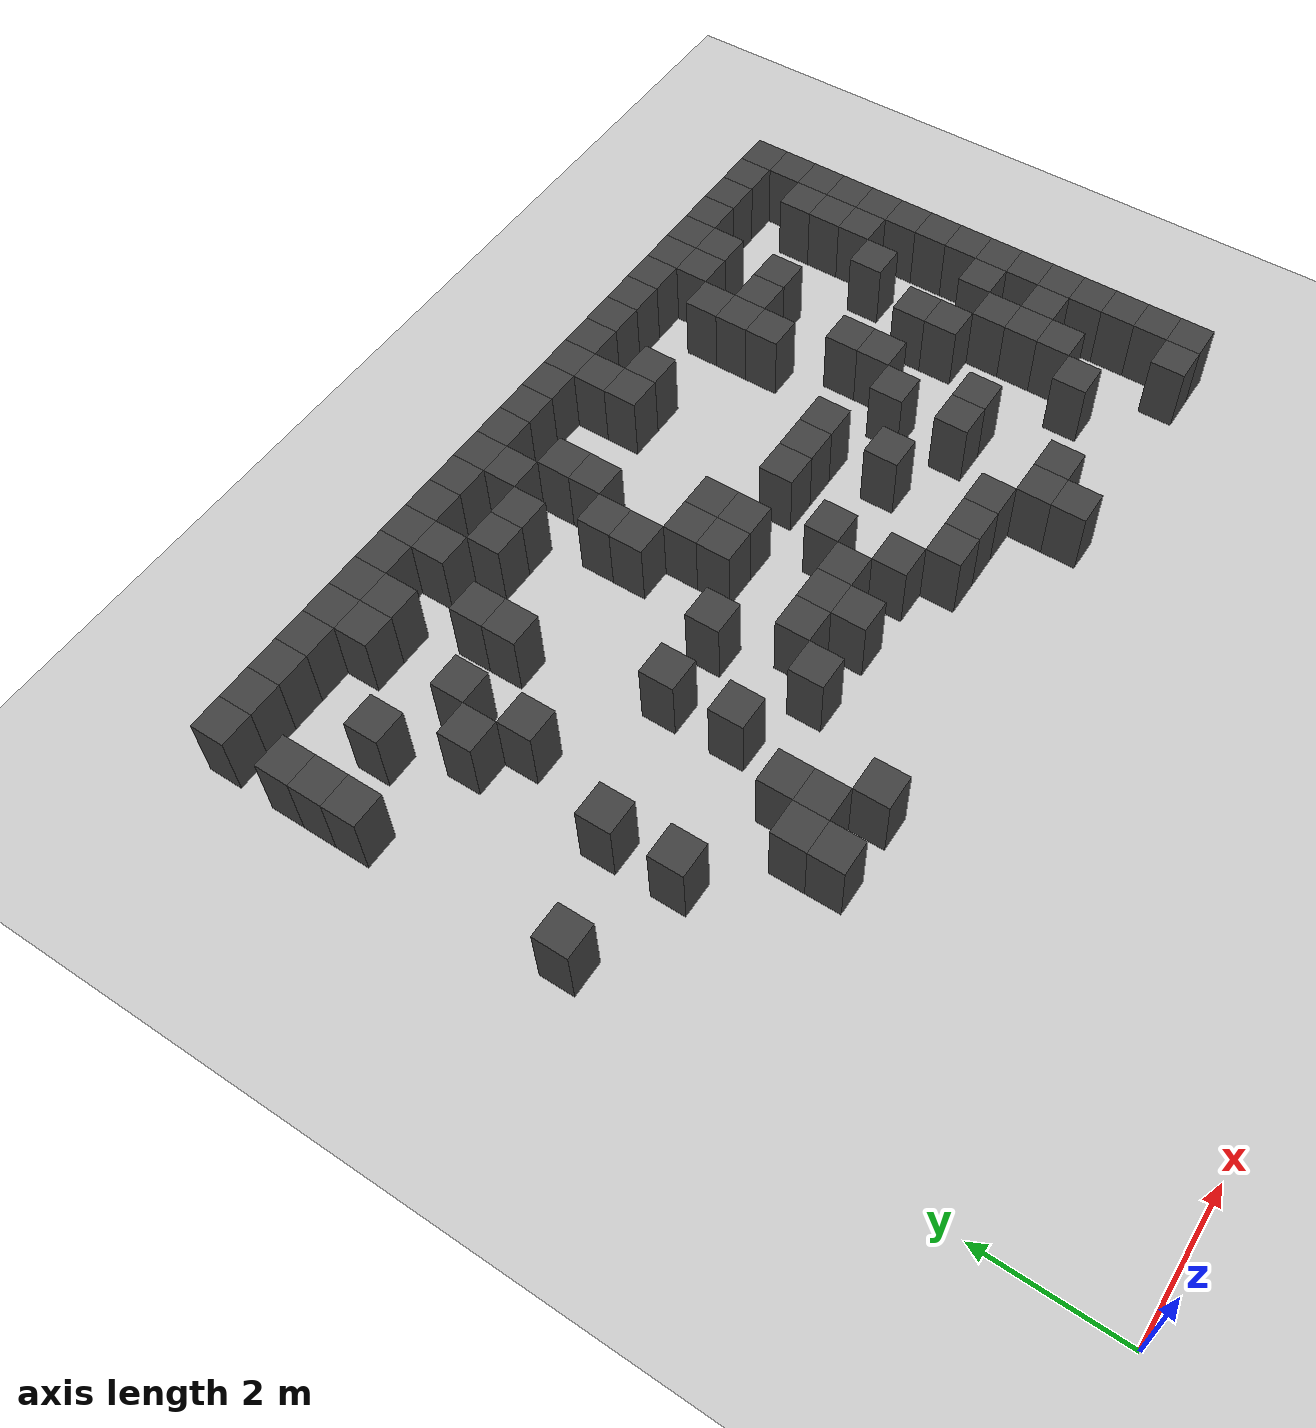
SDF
<sdf version="1.7">
 <world name="map_4557">
  <model name="ground_plane">
   <static>true</static>
   <link name="link">
    <collision name="collision">
     <geometry><plane><normal>0 0 1</normal><size>200 200</size></plane></geometry>
    </collision>
    <visual name="visual">
     <geometry><plane><normal>0 0 1</normal><size>200 200</size></plane></geometry>
     <material><ambient>0.8 0.8 0.8 1</ambient><diffuse>0.8 0.8 0.8 1</diffuse></material>
    </visual>
   </link>
  </model>
  <model name="maze_environment">
   <static>true</static>
   <link name="wall_25">
    <pose>0.250 12.250 0.500 0 0 0</pose>
    <collision name="col"><geometry><box><size>0.5 0.5 1.0</size></box></geometry></collision>
    <visual name="vis">
     <geometry><box><size>0.5 0.5 1.0</size></box></geometry>
     <material><ambient>0.15 0.15 0.15 1</ambient><diffuse>0.25 0.25 0.25 1</diffuse></material>
    </visual>
   </link>
   <link name="wall_26">
    <pose>0.750 12.250 0.500 0 0 0</pose>
    <collision name="col"><geometry><box><size>0.5 0.5 1.0</size></box></geometry></collision>
    <visual name="vis">
     <geometry><box><size>0.5 0.5 1.0</size></box></geometry>
     <material><ambient>0.15 0.15 0.15 1</ambient><diffuse>0.25 0.25 0.25 1</diffuse></material>
    </visual>
   </link>
   <link name="wall_27">
    <pose>1.250 12.250 0.500 0 0 0</pose>
    <collision name="col"><geometry><box><size>0.5 0.5 1.0</size></box></geometry></collision>
    <visual name="vis">
     <geometry><box><size>0.5 0.5 1.0</size></box></geometry>
     <material><ambient>0.15 0.15 0.15 1</ambient><diffuse>0.25 0.25 0.25 1</diffuse></material>
    </visual>
   </link>
   <link name="wall_28">
    <pose>1.750 12.250 0.500 0 0 0</pose>
    <collision name="col"><geometry><box><size>0.5 0.5 1.0</size></box></geometry></collision>
    <visual name="vis">
     <geometry><box><size>0.5 0.5 1.0</size></box></geometry>
     <material><ambient>0.15 0.15 0.15 1</ambient><diffuse>0.25 0.25 0.25 1</diffuse></material>
    </visual>
   </link>
   <link name="wall_29">
    <pose>2.250 12.250 0.500 0 0 0</pose>
    <collision name="col"><geometry><box><size>0.5 0.5 1.0</size></box></geometry></collision>
    <visual name="vis">
     <geometry><box><size>0.5 0.5 1.0</size></box></geometry>
     <material><ambient>0.15 0.15 0.15 1</ambient><diffuse>0.25 0.25 0.25 1</diffuse></material>
    </visual>
   </link>
   <link name="wall_30">
    <pose>2.750 12.250 0.500 0 0 0</pose>
    <collision name="col"><geometry><box><size>0.5 0.5 1.0</size></box></geometry></collision>
    <visual name="vis">
     <geometry><box><size>0.5 0.5 1.0</size></box></geometry>
     <material><ambient>0.15 0.15 0.15 1</ambient><diffuse>0.25 0.25 0.25 1</diffuse></material>
    </visual>
   </link>
   <link name="wall_31">
    <pose>3.250 12.250 0.500 0 0 0</pose>
    <collision name="col"><geometry><box><size>0.5 0.5 1.0</size></box></geometry></collision>
    <visual name="vis">
     <geometry><box><size>0.5 0.5 1.0</size></box></geometry>
     <material><ambient>0.15 0.15 0.15 1</ambient><diffuse>0.25 0.25 0.25 1</diffuse></material>
    </visual>
   </link>
   <link name="wall_32">
    <pose>3.750 12.250 0.500 0 0 0</pose>
    <collision name="col"><geometry><box><size>0.5 0.5 1.0</size></box></geometry></collision>
    <visual name="vis">
     <geometry><box><size>0.5 0.5 1.0</size></box></geometry>
     <material><ambient>0.15 0.15 0.15 1</ambient><diffuse>0.25 0.25 0.25 1</diffuse></material>
    </visual>
   </link>
   <link name="wall_33">
    <pose>4.250 12.250 0.500 0 0 0</pose>
    <collision name="col"><geometry><box><size>0.5 0.5 1.0</size></box></geometry></collision>
    <visual name="vis">
     <geometry><box><size>0.5 0.5 1.0</size></box></geometry>
     <material><ambient>0.15 0.15 0.15 1</ambient><diffuse>0.25 0.25 0.25 1</diffuse></material>
    </visual>
   </link>
   <link name="wall_34">
    <pose>4.750 12.250 0.500 0 0 0</pose>
    <collision name="col"><geometry><box><size>0.5 0.5 1.0</size></box></geometry></collision>
    <visual name="vis">
     <geometry><box><size>0.5 0.5 1.0</size></box></geometry>
     <material><ambient>0.15 0.15 0.15 1</ambient><diffuse>0.25 0.25 0.25 1</diffuse></material>
    </visual>
   </link>
   <link name="wall_35">
    <pose>5.250 12.250 0.500 0 0 0</pose>
    <collision name="col"><geometry><box><size>0.5 0.5 1.0</size></box></geometry></collision>
    <visual name="vis">
     <geometry><box><size>0.5 0.5 1.0</size></box></geometry>
     <material><ambient>0.15 0.15 0.15 1</ambient><diffuse>0.25 0.25 0.25 1</diffuse></material>
    </visual>
   </link>
   <link name="wall_36">
    <pose>5.750 12.250 0.500 0 0 0</pose>
    <collision name="col"><geometry><box><size>0.5 0.5 1.0</size></box></geometry></collision>
    <visual name="vis">
     <geometry><box><size>0.5 0.5 1.0</size></box></geometry>
     <material><ambient>0.15 0.15 0.15 1</ambient><diffuse>0.25 0.25 0.25 1</diffuse></material>
    </visual>
   </link>
   <link name="wall_37">
    <pose>6.250 12.250 0.500 0 0 0</pose>
    <collision name="col"><geometry><box><size>0.5 0.5 1.0</size></box></geometry></collision>
    <visual name="vis">
     <geometry><box><size>0.5 0.5 1.0</size></box></geometry>
     <material><ambient>0.15 0.15 0.15 1</ambient><diffuse>0.25 0.25 0.25 1</diffuse></material>
    </visual>
   </link>
   <link name="wall_38">
    <pose>6.750 12.250 0.500 0 0 0</pose>
    <collision name="col"><geometry><box><size>0.5 0.5 1.0</size></box></geometry></collision>
    <visual name="vis">
     <geometry><box><size>0.5 0.5 1.0</size></box></geometry>
     <material><ambient>0.15 0.15 0.15 1</ambient><diffuse>0.25 0.25 0.25 1</diffuse></material>
    </visual>
   </link>
   <link name="wall_39">
    <pose>7.250 12.250 0.500 0 0 0</pose>
    <collision name="col"><geometry><box><size>0.5 0.5 1.0</size></box></geometry></collision>
    <visual name="vis">
     <geometry><box><size>0.5 0.5 1.0</size></box></geometry>
     <material><ambient>0.15 0.15 0.15 1</ambient><diffuse>0.25 0.25 0.25 1</diffuse></material>
    </visual>
   </link>
   <link name="wall_40">
    <pose>7.750 12.250 0.500 0 0 0</pose>
    <collision name="col"><geometry><box><size>0.5 0.5 1.0</size></box></geometry></collision>
    <visual name="vis">
     <geometry><box><size>0.5 0.5 1.0</size></box></geometry>
     <material><ambient>0.15 0.15 0.15 1</ambient><diffuse>0.25 0.25 0.25 1</diffuse></material>
    </visual>
   </link>
   <link name="wall_41">
    <pose>8.250 12.250 0.500 0 0 0</pose>
    <collision name="col"><geometry><box><size>0.5 0.5 1.0</size></box></geometry></collision>
    <visual name="vis">
     <geometry><box><size>0.5 0.5 1.0</size></box></geometry>
     <material><ambient>0.15 0.15 0.15 1</ambient><diffuse>0.25 0.25 0.25 1</diffuse></material>
    </visual>
   </link>
   <link name="wall_42">
    <pose>8.750 12.250 0.500 0 0 0</pose>
    <collision name="col"><geometry><box><size>0.5 0.5 1.0</size></box></geometry></collision>
    <visual name="vis">
     <geometry><box><size>0.5 0.5 1.0</size></box></geometry>
     <material><ambient>0.15 0.15 0.15 1</ambient><diffuse>0.25 0.25 0.25 1</diffuse></material>
    </visual>
   </link>
   <link name="wall_43">
    <pose>9.250 12.250 0.500 0 0 0</pose>
    <collision name="col"><geometry><box><size>0.5 0.5 1.0</size></box></geometry></collision>
    <visual name="vis">
     <geometry><box><size>0.5 0.5 1.0</size></box></geometry>
     <material><ambient>0.15 0.15 0.15 1</ambient><diffuse>0.25 0.25 0.25 1</diffuse></material>
    </visual>
   </link>
   <link name="wall_44">
    <pose>9.750 12.250 0.500 0 0 0</pose>
    <collision name="col"><geometry><box><size>0.5 0.5 1.0</size></box></geometry></collision>
    <visual name="vis">
     <geometry><box><size>0.5 0.5 1.0</size></box></geometry>
     <material><ambient>0.15 0.15 0.15 1</ambient><diffuse>0.25 0.25 0.25 1</diffuse></material>
    </visual>
   </link>
   <link name="wall_45">
    <pose>10.250 12.250 0.500 0 0 0</pose>
    <collision name="col"><geometry><box><size>0.5 0.5 1.0</size></box></geometry></collision>
    <visual name="vis">
     <geometry><box><size>0.5 0.5 1.0</size></box></geometry>
     <material><ambient>0.15 0.15 0.15 1</ambient><diffuse>0.25 0.25 0.25 1</diffuse></material>
    </visual>
   </link>
   <link name="wall_46">
    <pose>10.750 12.250 0.500 0 0 0</pose>
    <collision name="col"><geometry><box><size>0.5 0.5 1.0</size></box></geometry></collision>
    <visual name="vis">
     <geometry><box><size>0.5 0.5 1.0</size></box></geometry>
     <material><ambient>0.15 0.15 0.15 1</ambient><diffuse>0.25 0.25 0.25 1</diffuse></material>
    </visual>
   </link>
   <link name="wall_47">
    <pose>11.250 12.250 0.500 0 0 0</pose>
    <collision name="col"><geometry><box><size>0.5 0.5 1.0</size></box></geometry></collision>
    <visual name="vis">
     <geometry><box><size>0.5 0.5 1.0</size></box></geometry>
     <material><ambient>0.15 0.15 0.15 1</ambient><diffuse>0.25 0.25 0.25 1</diffuse></material>
    </visual>
   </link>
   <link name="wall_48">
    <pose>11.750 12.250 0.500 0 0 0</pose>
    <collision name="col"><geometry><box><size>0.5 0.5 1.0</size></box></geometry></collision>
    <visual name="vis">
     <geometry><box><size>0.5 0.5 1.0</size></box></geometry>
     <material><ambient>0.15 0.15 0.15 1</ambient><diffuse>0.25 0.25 0.25 1</diffuse></material>
    </visual>
   </link>
   <link name="wall_49">
    <pose>12.250 12.250 0.500 0 0 0</pose>
    <collision name="col"><geometry><box><size>0.5 0.5 1.0</size></box></geometry></collision>
    <visual name="vis">
     <geometry><box><size>0.5 0.5 1.0</size></box></geometry>
     <material><ambient>0.15 0.15 0.15 1</ambient><diffuse>0.25 0.25 0.25 1</diffuse></material>
    </visual>
   </link>
   <link name="wall_55">
    <pose>2.250 11.750 0.500 0 0 0</pose>
    <collision name="col"><geometry><box><size>0.5 0.5 1.0</size></box></geometry></collision>
    <visual name="vis">
     <geometry><box><size>0.5 0.5 1.0</size></box></geometry>
     <material><ambient>0.15 0.15 0.15 1</ambient><diffuse>0.25 0.25 0.25 1</diffuse></material>
    </visual>
   </link>
   <link name="wall_56">
    <pose>2.750 11.750 0.500 0 0 0</pose>
    <collision name="col"><geometry><box><size>0.5 0.5 1.0</size></box></geometry></collision>
    <visual name="vis">
     <geometry><box><size>0.5 0.5 1.0</size></box></geometry>
     <material><ambient>0.15 0.15 0.15 1</ambient><diffuse>0.25 0.25 0.25 1</diffuse></material>
    </visual>
   </link>
   <link name="wall_57">
    <pose>3.750 11.750 0.500 0 0 0</pose>
    <collision name="col"><geometry><box><size>0.5 0.5 1.0</size></box></geometry></collision>
    <visual name="vis">
     <geometry><box><size>0.5 0.5 1.0</size></box></geometry>
     <material><ambient>0.15 0.15 0.15 1</ambient><diffuse>0.25 0.25 0.25 1</diffuse></material>
    </visual>
   </link>
   <link name="wall_58">
    <pose>5.250 11.750 0.500 0 0 0</pose>
    <collision name="col"><geometry><box><size>0.5 0.5 1.0</size></box></geometry></collision>
    <visual name="vis">
     <geometry><box><size>0.5 0.5 1.0</size></box></geometry>
     <material><ambient>0.15 0.15 0.15 1</ambient><diffuse>0.25 0.25 0.25 1</diffuse></material>
    </visual>
   </link>
   <link name="wall_59">
    <pose>7.250 11.750 0.500 0 0 0</pose>
    <collision name="col"><geometry><box><size>0.5 0.5 1.0</size></box></geometry></collision>
    <visual name="vis">
     <geometry><box><size>0.5 0.5 1.0</size></box></geometry>
     <material><ambient>0.15 0.15 0.15 1</ambient><diffuse>0.25 0.25 0.25 1</diffuse></material>
    </visual>
   </link>
   <link name="wall_60">
    <pose>9.750 11.750 0.500 0 0 0</pose>
    <collision name="col"><geometry><box><size>0.5 0.5 1.0</size></box></geometry></collision>
    <visual name="vis">
     <geometry><box><size>0.5 0.5 1.0</size></box></geometry>
     <material><ambient>0.15 0.15 0.15 1</ambient><diffuse>0.25 0.25 0.25 1</diffuse></material>
    </visual>
   </link>
   <link name="wall_61">
    <pose>10.250 11.750 0.500 0 0 0</pose>
    <collision name="col"><geometry><box><size>0.5 0.5 1.0</size></box></geometry></collision>
    <visual name="vis">
     <geometry><box><size>0.5 0.5 1.0</size></box></geometry>
     <material><ambient>0.15 0.15 0.15 1</ambient><diffuse>0.25 0.25 0.25 1</diffuse></material>
    </visual>
   </link>
   <link name="wall_62">
    <pose>12.250 11.750 0.500 0 0 0</pose>
    <collision name="col"><geometry><box><size>0.5 0.5 1.0</size></box></geometry></collision>
    <visual name="vis">
     <geometry><box><size>0.5 0.5 1.0</size></box></geometry>
     <material><ambient>0.15 0.15 0.15 1</ambient><diffuse>0.25 0.25 0.25 1</diffuse></material>
    </visual>
   </link>
   <link name="wall_70">
    <pose>0.250 11.250 0.500 0 0 0</pose>
    <collision name="col"><geometry><box><size>0.5 0.5 1.0</size></box></geometry></collision>
    <visual name="vis">
     <geometry><box><size>0.5 0.5 1.0</size></box></geometry>
     <material><ambient>0.15 0.15 0.15 1</ambient><diffuse>0.25 0.25 0.25 1</diffuse></material>
    </visual>
   </link>
   <link name="wall_71">
    <pose>4.250 11.250 0.500 0 0 0</pose>
    <collision name="col"><geometry><box><size>0.5 0.5 1.0</size></box></geometry></collision>
    <visual name="vis">
     <geometry><box><size>0.5 0.5 1.0</size></box></geometry>
     <material><ambient>0.15 0.15 0.15 1</ambient><diffuse>0.25 0.25 0.25 1</diffuse></material>
    </visual>
   </link>
   <link name="wall_72">
    <pose>4.750 11.250 0.500 0 0 0</pose>
    <collision name="col"><geometry><box><size>0.5 0.5 1.0</size></box></geometry></collision>
    <visual name="vis">
     <geometry><box><size>0.5 0.5 1.0</size></box></geometry>
     <material><ambient>0.15 0.15 0.15 1</ambient><diffuse>0.25 0.25 0.25 1</diffuse></material>
    </visual>
   </link>
   <link name="wall_73">
    <pose>5.750 11.250 0.500 0 0 0</pose>
    <collision name="col"><geometry><box><size>0.5 0.5 1.0</size></box></geometry></collision>
    <visual name="vis">
     <geometry><box><size>0.5 0.5 1.0</size></box></geometry>
     <material><ambient>0.15 0.15 0.15 1</ambient><diffuse>0.25 0.25 0.25 1</diffuse></material>
    </visual>
   </link>
   <link name="wall_74">
    <pose>7.250 11.250 0.500 0 0 0</pose>
    <collision name="col"><geometry><box><size>0.5 0.5 1.0</size></box></geometry></collision>
    <visual name="vis">
     <geometry><box><size>0.5 0.5 1.0</size></box></geometry>
     <material><ambient>0.15 0.15 0.15 1</ambient><diffuse>0.25 0.25 0.25 1</diffuse></material>
    </visual>
   </link>
   <link name="wall_75">
    <pose>7.750 11.250 0.500 0 0 0</pose>
    <collision name="col"><geometry><box><size>0.5 0.5 1.0</size></box></geometry></collision>
    <visual name="vis">
     <geometry><box><size>0.5 0.5 1.0</size></box></geometry>
     <material><ambient>0.15 0.15 0.15 1</ambient><diffuse>0.25 0.25 0.25 1</diffuse></material>
    </visual>
   </link>
   <link name="wall_76">
    <pose>9.250 11.250 0.500 0 0 0</pose>
    <collision name="col"><geometry><box><size>0.5 0.5 1.0</size></box></geometry></collision>
    <visual name="vis">
     <geometry><box><size>0.5 0.5 1.0</size></box></geometry>
     <material><ambient>0.15 0.15 0.15 1</ambient><diffuse>0.25 0.25 0.25 1</diffuse></material>
    </visual>
   </link>
   <link name="wall_77">
    <pose>11.750 11.250 0.500 0 0 0</pose>
    <collision name="col"><geometry><box><size>0.5 0.5 1.0</size></box></geometry></collision>
    <visual name="vis">
     <geometry><box><size>0.5 0.5 1.0</size></box></geometry>
     <material><ambient>0.15 0.15 0.15 1</ambient><diffuse>0.25 0.25 0.25 1</diffuse></material>
    </visual>
   </link>
   <link name="wall_78">
    <pose>12.250 11.250 0.500 0 0 0</pose>
    <collision name="col"><geometry><box><size>0.5 0.5 1.0</size></box></geometry></collision>
    <visual name="vis">
     <geometry><box><size>0.5 0.5 1.0</size></box></geometry>
     <material><ambient>0.15 0.15 0.15 1</ambient><diffuse>0.25 0.25 0.25 1</diffuse></material>
    </visual>
   </link>
   <link name="wall_86">
    <pose>0.250 10.750 0.500 0 0 0</pose>
    <collision name="col"><geometry><box><size>0.5 0.5 1.0</size></box></geometry></collision>
    <visual name="vis">
     <geometry><box><size>0.5 0.5 1.0</size></box></geometry>
     <material><ambient>0.15 0.15 0.15 1</ambient><diffuse>0.25 0.25 0.25 1</diffuse></material>
    </visual>
   </link>
   <link name="wall_87">
    <pose>1.250 10.750 0.500 0 0 0</pose>
    <collision name="col"><geometry><box><size>0.5 0.5 1.0</size></box></geometry></collision>
    <visual name="vis">
     <geometry><box><size>0.5 0.5 1.0</size></box></geometry>
     <material><ambient>0.15 0.15 0.15 1</ambient><diffuse>0.25 0.25 0.25 1</diffuse></material>
    </visual>
   </link>
   <link name="wall_88">
    <pose>3.250 10.750 0.500 0 0 0</pose>
    <collision name="col"><geometry><box><size>0.5 0.5 1.0</size></box></geometry></collision>
    <visual name="vis">
     <geometry><box><size>0.5 0.5 1.0</size></box></geometry>
     <material><ambient>0.15 0.15 0.15 1</ambient><diffuse>0.25 0.25 0.25 1</diffuse></material>
    </visual>
   </link>
   <link name="wall_89">
    <pose>5.750 10.750 0.500 0 0 0</pose>
    <collision name="col"><geometry><box><size>0.5 0.5 1.0</size></box></geometry></collision>
    <visual name="vis">
     <geometry><box><size>0.5 0.5 1.0</size></box></geometry>
     <material><ambient>0.15 0.15 0.15 1</ambient><diffuse>0.25 0.25 0.25 1</diffuse></material>
    </visual>
   </link>
   <link name="wall_90">
    <pose>9.250 10.750 0.500 0 0 0</pose>
    <collision name="col"><geometry><box><size>0.5 0.5 1.0</size></box></geometry></collision>
    <visual name="vis">
     <geometry><box><size>0.5 0.5 1.0</size></box></geometry>
     <material><ambient>0.15 0.15 0.15 1</ambient><diffuse>0.25 0.25 0.25 1</diffuse></material>
    </visual>
   </link>
   <link name="wall_91">
    <pose>9.750 10.750 0.500 0 0 0</pose>
    <collision name="col"><geometry><box><size>0.5 0.5 1.0</size></box></geometry></collision>
    <visual name="vis">
     <geometry><box><size>0.5 0.5 1.0</size></box></geometry>
     <material><ambient>0.15 0.15 0.15 1</ambient><diffuse>0.25 0.25 0.25 1</diffuse></material>
    </visual>
   </link>
   <link name="wall_92">
    <pose>10.250 10.750 0.500 0 0 0</pose>
    <collision name="col"><geometry><box><size>0.5 0.5 1.0</size></box></geometry></collision>
    <visual name="vis">
     <geometry><box><size>0.5 0.5 1.0</size></box></geometry>
     <material><ambient>0.15 0.15 0.15 1</ambient><diffuse>0.25 0.25 0.25 1</diffuse></material>
    </visual>
   </link>
   <link name="wall_93">
    <pose>11.750 10.750 0.500 0 0 0</pose>
    <collision name="col"><geometry><box><size>0.5 0.5 1.0</size></box></geometry></collision>
    <visual name="vis">
     <geometry><box><size>0.5 0.5 1.0</size></box></geometry>
     <material><ambient>0.15 0.15 0.15 1</ambient><diffuse>0.25 0.25 0.25 1</diffuse></material>
    </visual>
   </link>
   <link name="wall_94">
    <pose>12.250 10.750 0.500 0 0 0</pose>
    <collision name="col"><geometry><box><size>0.5 0.5 1.0</size></box></geometry></collision>
    <visual name="vis">
     <geometry><box><size>0.5 0.5 1.0</size></box></geometry>
     <material><ambient>0.15 0.15 0.15 1</ambient><diffuse>0.25 0.25 0.25 1</diffuse></material>
    </visual>
   </link>
   <link name="wall_98">
    <pose>0.250 10.250 0.500 0 0 0</pose>
    <collision name="col"><geometry><box><size>0.5 0.5 1.0</size></box></geometry></collision>
    <visual name="vis">
     <geometry><box><size>0.5 0.5 1.0</size></box></geometry>
     <material><ambient>0.15 0.15 0.15 1</ambient><diffuse>0.25 0.25 0.25 1</diffuse></material>
    </visual>
   </link>
   <link name="wall_99">
    <pose>2.250 10.250 0.500 0 0 0</pose>
    <collision name="col"><geometry><box><size>0.5 0.5 1.0</size></box></geometry></collision>
    <visual name="vis">
     <geometry><box><size>0.5 0.5 1.0</size></box></geometry>
     <material><ambient>0.15 0.15 0.15 1</ambient><diffuse>0.25 0.25 0.25 1</diffuse></material>
    </visual>
   </link>
   <link name="wall_100">
    <pose>3.250 10.250 0.500 0 0 0</pose>
    <collision name="col"><geometry><box><size>0.5 0.5 1.0</size></box></geometry></collision>
    <visual name="vis">
     <geometry><box><size>0.5 0.5 1.0</size></box></geometry>
     <material><ambient>0.15 0.15 0.15 1</ambient><diffuse>0.25 0.25 0.25 1</diffuse></material>
    </visual>
   </link>
   <link name="wall_101">
    <pose>5.250 10.250 0.500 0 0 0</pose>
    <collision name="col"><geometry><box><size>0.5 0.5 1.0</size></box></geometry></collision>
    <visual name="vis">
     <geometry><box><size>0.5 0.5 1.0</size></box></geometry>
     <material><ambient>0.15 0.15 0.15 1</ambient><diffuse>0.25 0.25 0.25 1</diffuse></material>
    </visual>
   </link>
   <link name="wall_102">
    <pose>9.250 10.250 0.500 0 0 0</pose>
    <collision name="col"><geometry><box><size>0.5 0.5 1.0</size></box></geometry></collision>
    <visual name="vis">
     <geometry><box><size>0.5 0.5 1.0</size></box></geometry>
     <material><ambient>0.15 0.15 0.15 1</ambient><diffuse>0.25 0.25 0.25 1</diffuse></material>
    </visual>
   </link>
   <link name="wall_103">
    <pose>11.750 10.250 0.500 0 0 0</pose>
    <collision name="col"><geometry><box><size>0.5 0.5 1.0</size></box></geometry></collision>
    <visual name="vis">
     <geometry><box><size>0.5 0.5 1.0</size></box></geometry>
     <material><ambient>0.15 0.15 0.15 1</ambient><diffuse>0.25 0.25 0.25 1</diffuse></material>
    </visual>
   </link>
   <link name="wall_104">
    <pose>12.250 10.250 0.500 0 0 0</pose>
    <collision name="col"><geometry><box><size>0.5 0.5 1.0</size></box></geometry></collision>
    <visual name="vis">
     <geometry><box><size>0.5 0.5 1.0</size></box></geometry>
     <material><ambient>0.15 0.15 0.15 1</ambient><diffuse>0.25 0.25 0.25 1</diffuse></material>
    </visual>
   </link>
   <link name="wall_112">
    <pose>1.750 9.750 0.500 0 0 0</pose>
    <collision name="col"><geometry><box><size>0.5 0.5 1.0</size></box></geometry></collision>
    <visual name="vis">
     <geometry><box><size>0.5 0.5 1.0</size></box></geometry>
     <material><ambient>0.15 0.15 0.15 1</ambient><diffuse>0.25 0.25 0.25 1</diffuse></material>
    </visual>
   </link>
   <link name="wall_113">
    <pose>5.250 9.750 0.500 0 0 0</pose>
    <collision name="col"><geometry><box><size>0.5 0.5 1.0</size></box></geometry></collision>
    <visual name="vis">
     <geometry><box><size>0.5 0.5 1.0</size></box></geometry>
     <material><ambient>0.15 0.15 0.15 1</ambient><diffuse>0.25 0.25 0.25 1</diffuse></material>
    </visual>
   </link>
   <link name="wall_114">
    <pose>11.250 9.750 0.500 0 0 0</pose>
    <collision name="col"><geometry><box><size>0.5 0.5 1.0</size></box></geometry></collision>
    <visual name="vis">
     <geometry><box><size>0.5 0.5 1.0</size></box></geometry>
     <material><ambient>0.15 0.15 0.15 1</ambient><diffuse>0.25 0.25 0.25 1</diffuse></material>
    </visual>
   </link>
   <link name="wall_115">
    <pose>12.250 9.750 0.500 0 0 0</pose>
    <collision name="col"><geometry><box><size>0.5 0.5 1.0</size></box></geometry></collision>
    <visual name="vis">
     <geometry><box><size>0.5 0.5 1.0</size></box></geometry>
     <material><ambient>0.15 0.15 0.15 1</ambient><diffuse>0.25 0.25 0.25 1</diffuse></material>
    </visual>
   </link>
   <link name="wall_121">
    <pose>2.250 9.250 0.500 0 0 0</pose>
    <collision name="col"><geometry><box><size>0.5 0.5 1.0</size></box></geometry></collision>
    <visual name="vis">
     <geometry><box><size>0.5 0.5 1.0</size></box></geometry>
     <material><ambient>0.15 0.15 0.15 1</ambient><diffuse>0.25 0.25 0.25 1</diffuse></material>
    </visual>
   </link>
   <link name="wall_122">
    <pose>5.750 9.250 0.500 0 0 0</pose>
    <collision name="col"><geometry><box><size>0.5 0.5 1.0</size></box></geometry></collision>
    <visual name="vis">
     <geometry><box><size>0.5 0.5 1.0</size></box></geometry>
     <material><ambient>0.15 0.15 0.15 1</ambient><diffuse>0.25 0.25 0.25 1</diffuse></material>
    </visual>
   </link>
   <link name="wall_123">
    <pose>6.250 9.250 0.500 0 0 0</pose>
    <collision name="col"><geometry><box><size>0.5 0.5 1.0</size></box></geometry></collision>
    <visual name="vis">
     <geometry><box><size>0.5 0.5 1.0</size></box></geometry>
     <material><ambient>0.15 0.15 0.15 1</ambient><diffuse>0.25 0.25 0.25 1</diffuse></material>
    </visual>
   </link>
   <link name="wall_124">
    <pose>9.750 9.250 0.500 0 0 0</pose>
    <collision name="col"><geometry><box><size>0.5 0.5 1.0</size></box></geometry></collision>
    <visual name="vis">
     <geometry><box><size>0.5 0.5 1.0</size></box></geometry>
     <material><ambient>0.15 0.15 0.15 1</ambient><diffuse>0.25 0.25 0.25 1</diffuse></material>
    </visual>
   </link>
   <link name="wall_125">
    <pose>12.250 9.250 0.500 0 0 0</pose>
    <collision name="col"><geometry><box><size>0.5 0.5 1.0</size></box></geometry></collision>
    <visual name="vis">
     <geometry><box><size>0.5 0.5 1.0</size></box></geometry>
     <material><ambient>0.15 0.15 0.15 1</ambient><diffuse>0.25 0.25 0.25 1</diffuse></material>
    </visual>
   </link>
   <link name="wall_134">
    <pose>5.750 8.750 0.500 0 0 0</pose>
    <collision name="col"><geometry><box><size>0.5 0.5 1.0</size></box></geometry></collision>
    <visual name="vis">
     <geometry><box><size>0.5 0.5 1.0</size></box></geometry>
     <material><ambient>0.15 0.15 0.15 1</ambient><diffuse>0.25 0.25 0.25 1</diffuse></material>
    </visual>
   </link>
   <link name="wall_135">
    <pose>6.250 8.750 0.500 0 0 0</pose>
    <collision name="col"><geometry><box><size>0.5 0.5 1.0</size></box></geometry></collision>
    <visual name="vis">
     <geometry><box><size>0.5 0.5 1.0</size></box></geometry>
     <material><ambient>0.15 0.15 0.15 1</ambient><diffuse>0.25 0.25 0.25 1</diffuse></material>
    </visual>
   </link>
   <link name="wall_136">
    <pose>7.250 8.750 0.500 0 0 0</pose>
    <collision name="col"><geometry><box><size>0.5 0.5 1.0</size></box></geometry></collision>
    <visual name="vis">
     <geometry><box><size>0.5 0.5 1.0</size></box></geometry>
     <material><ambient>0.15 0.15 0.15 1</ambient><diffuse>0.25 0.25 0.25 1</diffuse></material>
    </visual>
   </link>
   <link name="wall_137">
    <pose>7.750 8.750 0.500 0 0 0</pose>
    <collision name="col"><geometry><box><size>0.5 0.5 1.0</size></box></geometry></collision>
    <visual name="vis">
     <geometry><box><size>0.5 0.5 1.0</size></box></geometry>
     <material><ambient>0.15 0.15 0.15 1</ambient><diffuse>0.25 0.25 0.25 1</diffuse></material>
    </visual>
   </link>
   <link name="wall_138">
    <pose>8.250 8.750 0.500 0 0 0</pose>
    <collision name="col"><geometry><box><size>0.5 0.5 1.0</size></box></geometry></collision>
    <visual name="vis">
     <geometry><box><size>0.5 0.5 1.0</size></box></geometry>
     <material><ambient>0.15 0.15 0.15 1</ambient><diffuse>0.25 0.25 0.25 1</diffuse></material>
    </visual>
   </link>
   <link name="wall_139">
    <pose>9.750 8.750 0.500 0 0 0</pose>
    <collision name="col"><geometry><box><size>0.5 0.5 1.0</size></box></geometry></collision>
    <visual name="vis">
     <geometry><box><size>0.5 0.5 1.0</size></box></geometry>
     <material><ambient>0.15 0.15 0.15 1</ambient><diffuse>0.25 0.25 0.25 1</diffuse></material>
    </visual>
   </link>
   <link name="wall_140">
    <pose>10.750 8.750 0.500 0 0 0</pose>
    <collision name="col"><geometry><box><size>0.5 0.5 1.0</size></box></geometry></collision>
    <visual name="vis">
     <geometry><box><size>0.5 0.5 1.0</size></box></geometry>
     <material><ambient>0.15 0.15 0.15 1</ambient><diffuse>0.25 0.25 0.25 1</diffuse></material>
    </visual>
   </link>
   <link name="wall_141">
    <pose>12.250 8.750 0.500 0 0 0</pose>
    <collision name="col"><geometry><box><size>0.5 0.5 1.0</size></box></geometry></collision>
    <visual name="vis">
     <geometry><box><size>0.5 0.5 1.0</size></box></geometry>
     <material><ambient>0.15 0.15 0.15 1</ambient><diffuse>0.25 0.25 0.25 1</diffuse></material>
    </visual>
   </link>
   <link name="wall_149">
    <pose>3.750 8.250 0.500 0 0 0</pose>
    <collision name="col"><geometry><box><size>0.5 0.5 1.0</size></box></geometry></collision>
    <visual name="vis">
     <geometry><box><size>0.5 0.5 1.0</size></box></geometry>
     <material><ambient>0.15 0.15 0.15 1</ambient><diffuse>0.25 0.25 0.25 1</diffuse></material>
    </visual>
   </link>
   <link name="wall_150">
    <pose>4.750 8.250 0.500 0 0 0</pose>
    <collision name="col"><geometry><box><size>0.5 0.5 1.0</size></box></geometry></collision>
    <visual name="vis">
     <geometry><box><size>0.5 0.5 1.0</size></box></geometry>
     <material><ambient>0.15 0.15 0.15 1</ambient><diffuse>0.25 0.25 0.25 1</diffuse></material>
    </visual>
   </link>
   <link name="wall_151">
    <pose>9.250 8.250 0.500 0 0 0</pose>
    <collision name="col"><geometry><box><size>0.5 0.5 1.0</size></box></geometry></collision>
    <visual name="vis">
     <geometry><box><size>0.5 0.5 1.0</size></box></geometry>
     <material><ambient>0.15 0.15 0.15 1</ambient><diffuse>0.25 0.25 0.25 1</diffuse></material>
    </visual>
   </link>
   <link name="wall_152">
    <pose>10.750 8.250 0.500 0 0 0</pose>
    <collision name="col"><geometry><box><size>0.5 0.5 1.0</size></box></geometry></collision>
    <visual name="vis">
     <geometry><box><size>0.5 0.5 1.0</size></box></geometry>
     <material><ambient>0.15 0.15 0.15 1</ambient><diffuse>0.25 0.25 0.25 1</diffuse></material>
    </visual>
   </link>
   <link name="wall_153">
    <pose>11.750 8.250 0.500 0 0 0</pose>
    <collision name="col"><geometry><box><size>0.5 0.5 1.0</size></box></geometry></collision>
    <visual name="vis">
     <geometry><box><size>0.5 0.5 1.0</size></box></geometry>
     <material><ambient>0.15 0.15 0.15 1</ambient><diffuse>0.25 0.25 0.25 1</diffuse></material>
    </visual>
   </link>
   <link name="wall_154">
    <pose>12.250 8.250 0.500 0 0 0</pose>
    <collision name="col"><geometry><box><size>0.5 0.5 1.0</size></box></geometry></collision>
    <visual name="vis">
     <geometry><box><size>0.5 0.5 1.0</size></box></geometry>
     <material><ambient>0.15 0.15 0.15 1</ambient><diffuse>0.25 0.25 0.25 1</diffuse></material>
    </visual>
   </link>
   <link name="wall_158">
    <pose>1.750 7.750 0.500 0 0 0</pose>
    <collision name="col"><geometry><box><size>0.5 0.5 1.0</size></box></geometry></collision>
    <visual name="vis">
     <geometry><box><size>0.5 0.5 1.0</size></box></geometry>
     <material><ambient>0.15 0.15 0.15 1</ambient><diffuse>0.25 0.25 0.25 1</diffuse></material>
    </visual>
   </link>
   <link name="wall_159">
    <pose>6.750 7.750 0.500 0 0 0</pose>
    <collision name="col"><geometry><box><size>0.5 0.5 1.0</size></box></geometry></collision>
    <visual name="vis">
     <geometry><box><size>0.5 0.5 1.0</size></box></geometry>
     <material><ambient>0.15 0.15 0.15 1</ambient><diffuse>0.25 0.25 0.25 1</diffuse></material>
    </visual>
   </link>
   <link name="wall_160">
    <pose>8.250 7.750 0.500 0 0 0</pose>
    <collision name="col"><geometry><box><size>0.5 0.5 1.0</size></box></geometry></collision>
    <visual name="vis">
     <geometry><box><size>0.5 0.5 1.0</size></box></geometry>
     <material><ambient>0.15 0.15 0.15 1</ambient><diffuse>0.25 0.25 0.25 1</diffuse></material>
    </visual>
   </link>
   <link name="wall_161">
    <pose>11.250 7.750 0.500 0 0 0</pose>
    <collision name="col"><geometry><box><size>0.5 0.5 1.0</size></box></geometry></collision>
    <visual name="vis">
     <geometry><box><size>0.5 0.5 1.0</size></box></geometry>
     <material><ambient>0.15 0.15 0.15 1</ambient><diffuse>0.25 0.25 0.25 1</diffuse></material>
    </visual>
   </link>
   <link name="wall_162">
    <pose>12.250 7.750 0.500 0 0 0</pose>
    <collision name="col"><geometry><box><size>0.5 0.5 1.0</size></box></geometry></collision>
    <visual name="vis">
     <geometry><box><size>0.5 0.5 1.0</size></box></geometry>
     <material><ambient>0.15 0.15 0.15 1</ambient><diffuse>0.25 0.25 0.25 1</diffuse></material>
    </visual>
   </link>
   <link name="wall_169">
    <pose>0.250 7.250 0.500 0 0 0</pose>
    <collision name="col"><geometry><box><size>0.5 0.5 1.0</size></box></geometry></collision>
    <visual name="vis">
     <geometry><box><size>0.5 0.5 1.0</size></box></geometry>
     <material><ambient>0.15 0.15 0.15 1</ambient><diffuse>0.25 0.25 0.25 1</diffuse></material>
    </visual>
   </link>
   <link name="wall_170">
    <pose>3.750 7.250 0.500 0 0 0</pose>
    <collision name="col"><geometry><box><size>0.5 0.5 1.0</size></box></geometry></collision>
    <visual name="vis">
     <geometry><box><size>0.5 0.5 1.0</size></box></geometry>
     <material><ambient>0.15 0.15 0.15 1</ambient><diffuse>0.25 0.25 0.25 1</diffuse></material>
    </visual>
   </link>
   <link name="wall_171">
    <pose>5.250 7.250 0.500 0 0 0</pose>
    <collision name="col"><geometry><box><size>0.5 0.5 1.0</size></box></geometry></collision>
    <visual name="vis">
     <geometry><box><size>0.5 0.5 1.0</size></box></geometry>
     <material><ambient>0.15 0.15 0.15 1</ambient><diffuse>0.25 0.25 0.25 1</diffuse></material>
    </visual>
   </link>
   <link name="wall_172">
    <pose>5.750 7.250 0.500 0 0 0</pose>
    <collision name="col"><geometry><box><size>0.5 0.5 1.0</size></box></geometry></collision>
    <visual name="vis">
     <geometry><box><size>0.5 0.5 1.0</size></box></geometry>
     <material><ambient>0.15 0.15 0.15 1</ambient><diffuse>0.25 0.25 0.25 1</diffuse></material>
    </visual>
   </link>
   <link name="wall_173">
    <pose>6.250 7.250 0.500 0 0 0</pose>
    <collision name="col"><geometry><box><size>0.5 0.5 1.0</size></box></geometry></collision>
    <visual name="vis">
     <geometry><box><size>0.5 0.5 1.0</size></box></geometry>
     <material><ambient>0.15 0.15 0.15 1</ambient><diffuse>0.25 0.25 0.25 1</diffuse></material>
    </visual>
   </link>
   <link name="wall_174">
    <pose>9.250 7.250 0.500 0 0 0</pose>
    <collision name="col"><geometry><box><size>0.5 0.5 1.0</size></box></geometry></collision>
    <visual name="vis">
     <geometry><box><size>0.5 0.5 1.0</size></box></geometry>
     <material><ambient>0.15 0.15 0.15 1</ambient><diffuse>0.25 0.25 0.25 1</diffuse></material>
    </visual>
   </link>
   <link name="wall_175">
    <pose>9.750 7.250 0.500 0 0 0</pose>
    <collision name="col"><geometry><box><size>0.5 0.5 1.0</size></box></geometry></collision>
    <visual name="vis">
     <geometry><box><size>0.5 0.5 1.0</size></box></geometry>
     <material><ambient>0.15 0.15 0.15 1</ambient><diffuse>0.25 0.25 0.25 1</diffuse></material>
    </visual>
   </link>
   <link name="wall_176">
    <pose>11.250 7.250 0.500 0 0 0</pose>
    <collision name="col"><geometry><box><size>0.5 0.5 1.0</size></box></geometry></collision>
    <visual name="vis">
     <geometry><box><size>0.5 0.5 1.0</size></box></geometry>
     <material><ambient>0.15 0.15 0.15 1</ambient><diffuse>0.25 0.25 0.25 1</diffuse></material>
    </visual>
   </link>
   <link name="wall_177">
    <pose>11.750 7.250 0.500 0 0 0</pose>
    <collision name="col"><geometry><box><size>0.5 0.5 1.0</size></box></geometry></collision>
    <visual name="vis">
     <geometry><box><size>0.5 0.5 1.0</size></box></geometry>
     <material><ambient>0.15 0.15 0.15 1</ambient><diffuse>0.25 0.25 0.25 1</diffuse></material>
    </visual>
   </link>
   <link name="wall_178">
    <pose>12.250 7.250 0.500 0 0 0</pose>
    <collision name="col"><geometry><box><size>0.5 0.5 1.0</size></box></geometry></collision>
    <visual name="vis">
     <geometry><box><size>0.5 0.5 1.0</size></box></geometry>
     <material><ambient>0.15 0.15 0.15 1</ambient><diffuse>0.25 0.25 0.25 1</diffuse></material>
    </visual>
   </link>
   <link name="wall_184">
    <pose>1.750 6.750 0.500 0 0 0</pose>
    <collision name="col"><geometry><box><size>0.5 0.5 1.0</size></box></geometry></collision>
    <visual name="vis">
     <geometry><box><size>0.5 0.5 1.0</size></box></geometry>
     <material><ambient>0.15 0.15 0.15 1</ambient><diffuse>0.25 0.25 0.25 1</diffuse></material>
    </visual>
   </link>
   <link name="wall_185">
    <pose>4.750 6.750 0.500 0 0 0</pose>
    <collision name="col"><geometry><box><size>0.5 0.5 1.0</size></box></geometry></collision>
    <visual name="vis">
     <geometry><box><size>0.5 0.5 1.0</size></box></geometry>
     <material><ambient>0.15 0.15 0.15 1</ambient><diffuse>0.25 0.25 0.25 1</diffuse></material>
    </visual>
   </link>
   <link name="wall_186">
    <pose>5.750 6.750 0.500 0 0 0</pose>
    <collision name="col"><geometry><box><size>0.5 0.5 1.0</size></box></geometry></collision>
    <visual name="vis">
     <geometry><box><size>0.5 0.5 1.0</size></box></geometry>
     <material><ambient>0.15 0.15 0.15 1</ambient><diffuse>0.25 0.25 0.25 1</diffuse></material>
    </visual>
   </link>
   <link name="wall_187">
    <pose>6.750 6.750 0.500 0 0 0</pose>
    <collision name="col"><geometry><box><size>0.5 0.5 1.0</size></box></geometry></collision>
    <visual name="vis">
     <geometry><box><size>0.5 0.5 1.0</size></box></geometry>
     <material><ambient>0.15 0.15 0.15 1</ambient><diffuse>0.25 0.25 0.25 1</diffuse></material>
    </visual>
   </link>
   <link name="wall_188">
    <pose>11.250 6.750 0.500 0 0 0</pose>
    <collision name="col"><geometry><box><size>0.5 0.5 1.0</size></box></geometry></collision>
    <visual name="vis">
     <geometry><box><size>0.5 0.5 1.0</size></box></geometry>
     <material><ambient>0.15 0.15 0.15 1</ambient><diffuse>0.25 0.25 0.25 1</diffuse></material>
    </visual>
   </link>
   <link name="wall_189">
    <pose>12.250 6.750 0.500 0 0 0</pose>
    <collision name="col"><geometry><box><size>0.5 0.5 1.0</size></box></geometry></collision>
    <visual name="vis">
     <geometry><box><size>0.5 0.5 1.0</size></box></geometry>
     <material><ambient>0.15 0.15 0.15 1</ambient><diffuse>0.25 0.25 0.25 1</diffuse></material>
    </visual>
   </link>
   <link name="wall_201">
    <pose>3.250 6.250 0.500 0 0 0</pose>
    <collision name="col"><geometry><box><size>0.5 0.5 1.0</size></box></geometry></collision>
    <visual name="vis">
     <geometry><box><size>0.5 0.5 1.0</size></box></geometry>
     <material><ambient>0.15 0.15 0.15 1</ambient><diffuse>0.25 0.25 0.25 1</diffuse></material>
    </visual>
   </link>
   <link name="wall_202">
    <pose>7.250 6.250 0.500 0 0 0</pose>
    <collision name="col"><geometry><box><size>0.5 0.5 1.0</size></box></geometry></collision>
    <visual name="vis">
     <geometry><box><size>0.5 0.5 1.0</size></box></geometry>
     <material><ambient>0.15 0.15 0.15 1</ambient><diffuse>0.25 0.25 0.25 1</diffuse></material>
    </visual>
   </link>
   <link name="wall_203">
    <pose>7.750 6.250 0.500 0 0 0</pose>
    <collision name="col"><geometry><box><size>0.5 0.5 1.0</size></box></geometry></collision>
    <visual name="vis">
     <geometry><box><size>0.5 0.5 1.0</size></box></geometry>
     <material><ambient>0.15 0.15 0.15 1</ambient><diffuse>0.25 0.25 0.25 1</diffuse></material>
    </visual>
   </link>
   <link name="wall_204">
    <pose>8.250 6.250 0.500 0 0 0</pose>
    <collision name="col"><geometry><box><size>0.5 0.5 1.0</size></box></geometry></collision>
    <visual name="vis">
     <geometry><box><size>0.5 0.5 1.0</size></box></geometry>
     <material><ambient>0.15 0.15 0.15 1</ambient><diffuse>0.25 0.25 0.25 1</diffuse></material>
    </visual>
   </link>
   <link name="wall_205">
    <pose>10.750 6.250 0.500 0 0 0</pose>
    <collision name="col"><geometry><box><size>0.5 0.5 1.0</size></box></geometry></collision>
    <visual name="vis">
     <geometry><box><size>0.5 0.5 1.0</size></box></geometry>
     <material><ambient>0.15 0.15 0.15 1</ambient><diffuse>0.25 0.25 0.25 1</diffuse></material>
    </visual>
   </link>
   <link name="wall_206">
    <pose>12.250 6.250 0.500 0 0 0</pose>
    <collision name="col"><geometry><box><size>0.5 0.5 1.0</size></box></geometry></collision>
    <visual name="vis">
     <geometry><box><size>0.5 0.5 1.0</size></box></geometry>
     <material><ambient>0.15 0.15 0.15 1</ambient><diffuse>0.25 0.25 0.25 1</diffuse></material>
    </visual>
   </link>
   <link name="wall_212">
    <pose>2.750 5.750 0.500 0 0 0</pose>
    <collision name="col"><geometry><box><size>0.5 0.5 1.0</size></box></geometry></collision>
    <visual name="vis">
     <geometry><box><size>0.5 0.5 1.0</size></box></geometry>
     <material><ambient>0.15 0.15 0.15 1</ambient><diffuse>0.25 0.25 0.25 1</diffuse></material>
    </visual>
   </link>
   <link name="wall_213">
    <pose>3.250 5.750 0.500 0 0 0</pose>
    <collision name="col"><geometry><box><size>0.5 0.5 1.0</size></box></geometry></collision>
    <visual name="vis">
     <geometry><box><size>0.5 0.5 1.0</size></box></geometry>
     <material><ambient>0.15 0.15 0.15 1</ambient><diffuse>0.25 0.25 0.25 1</diffuse></material>
    </visual>
   </link>
   <link name="wall_214">
    <pose>8.750 5.750 0.500 0 0 0</pose>
    <collision name="col"><geometry><box><size>0.5 0.5 1.0</size></box></geometry></collision>
    <visual name="vis">
     <geometry><box><size>0.5 0.5 1.0</size></box></geometry>
     <material><ambient>0.15 0.15 0.15 1</ambient><diffuse>0.25 0.25 0.25 1</diffuse></material>
    </visual>
   </link>
   <link name="wall_215">
    <pose>9.250 5.750 0.500 0 0 0</pose>
    <collision name="col"><geometry><box><size>0.5 0.5 1.0</size></box></geometry></collision>
    <visual name="vis">
     <geometry><box><size>0.5 0.5 1.0</size></box></geometry>
     <material><ambient>0.15 0.15 0.15 1</ambient><diffuse>0.25 0.25 0.25 1</diffuse></material>
    </visual>
   </link>
   <link name="wall_216">
    <pose>12.250 5.750 0.500 0 0 0</pose>
    <collision name="col"><geometry><box><size>0.5 0.5 1.0</size></box></geometry></collision>
    <visual name="vis">
     <geometry><box><size>0.5 0.5 1.0</size></box></geometry>
     <material><ambient>0.15 0.15 0.15 1</ambient><diffuse>0.25 0.25 0.25 1</diffuse></material>
    </visual>
   </link>
   <link name="wall_223">
    <pose>2.750 5.250 0.500 0 0 0</pose>
    <collision name="col"><geometry><box><size>0.5 0.5 1.0</size></box></geometry></collision>
    <visual name="vis">
     <geometry><box><size>0.5 0.5 1.0</size></box></geometry>
     <material><ambient>0.15 0.15 0.15 1</ambient><diffuse>0.25 0.25 0.25 1</diffuse></material>
    </visual>
   </link>
   <link name="wall_224">
    <pose>3.750 5.250 0.500 0 0 0</pose>
    <collision name="col"><geometry><box><size>0.5 0.5 1.0</size></box></geometry></collision>
    <visual name="vis">
     <geometry><box><size>0.5 0.5 1.0</size></box></geometry>
     <material><ambient>0.15 0.15 0.15 1</ambient><diffuse>0.25 0.25 0.25 1</diffuse></material>
    </visual>
   </link>
   <link name="wall_225">
    <pose>8.750 5.250 0.500 0 0 0</pose>
    <collision name="col"><geometry><box><size>0.5 0.5 1.0</size></box></geometry></collision>
    <visual name="vis">
     <geometry><box><size>0.5 0.5 1.0</size></box></geometry>
     <material><ambient>0.15 0.15 0.15 1</ambient><diffuse>0.25 0.25 0.25 1</diffuse></material>
    </visual>
   </link>
   <link name="wall_226">
    <pose>11.750 5.250 0.500 0 0 0</pose>
    <collision name="col"><geometry><box><size>0.5 0.5 1.0</size></box></geometry></collision>
    <visual name="vis">
     <geometry><box><size>0.5 0.5 1.0</size></box></geometry>
     <material><ambient>0.15 0.15 0.15 1</ambient><diffuse>0.25 0.25 0.25 1</diffuse></material>
    </visual>
   </link>
   <link name="wall_227">
    <pose>12.250 5.250 0.500 0 0 0</pose>
    <collision name="col"><geometry><box><size>0.5 0.5 1.0</size></box></geometry></collision>
    <visual name="vis">
     <geometry><box><size>0.5 0.5 1.0</size></box></geometry>
     <material><ambient>0.15 0.15 0.15 1</ambient><diffuse>0.25 0.25 0.25 1</diffuse></material>
    </visual>
   </link>
  </model>
 </world>
</sdf>
